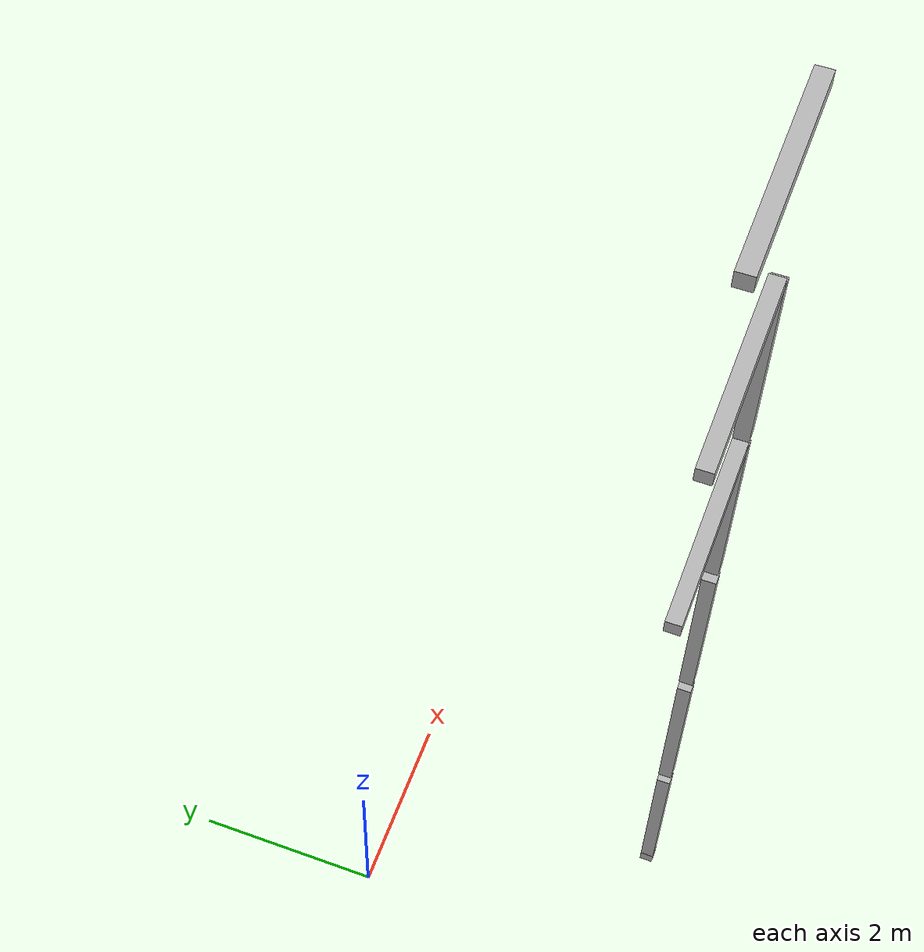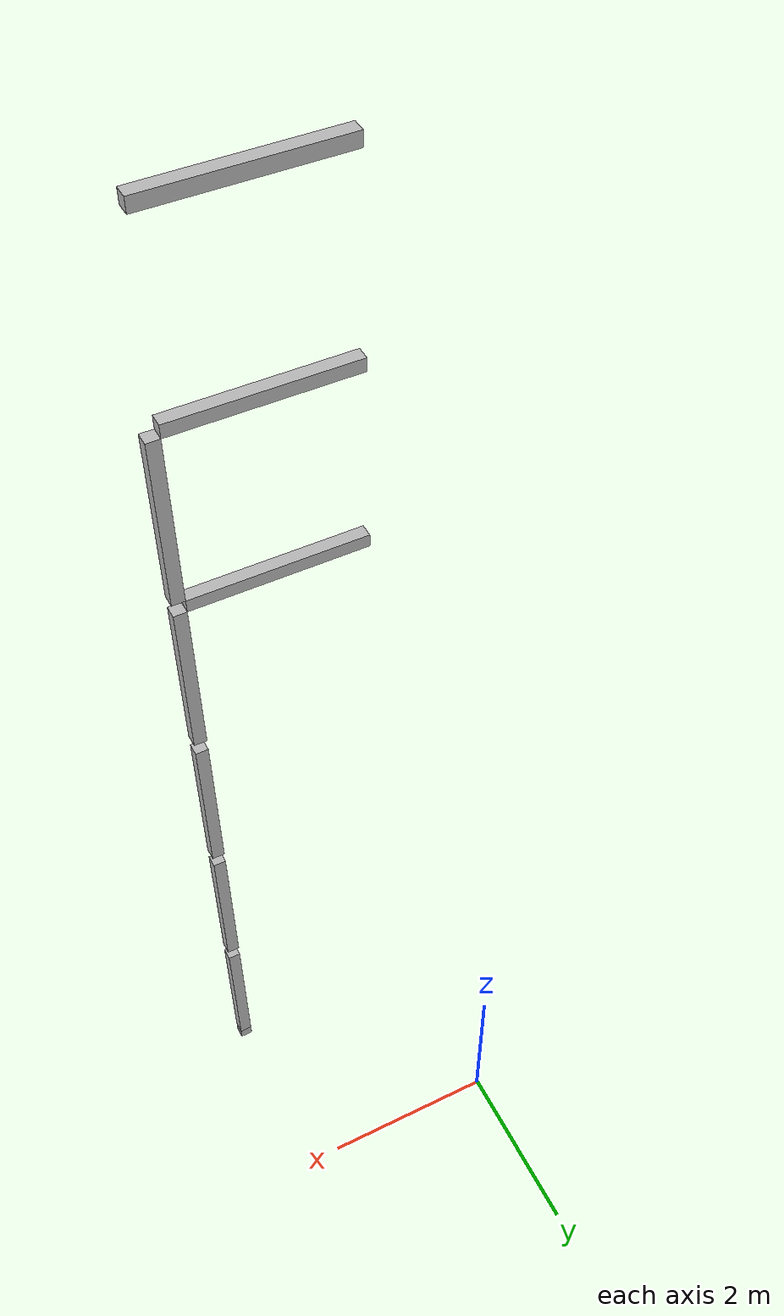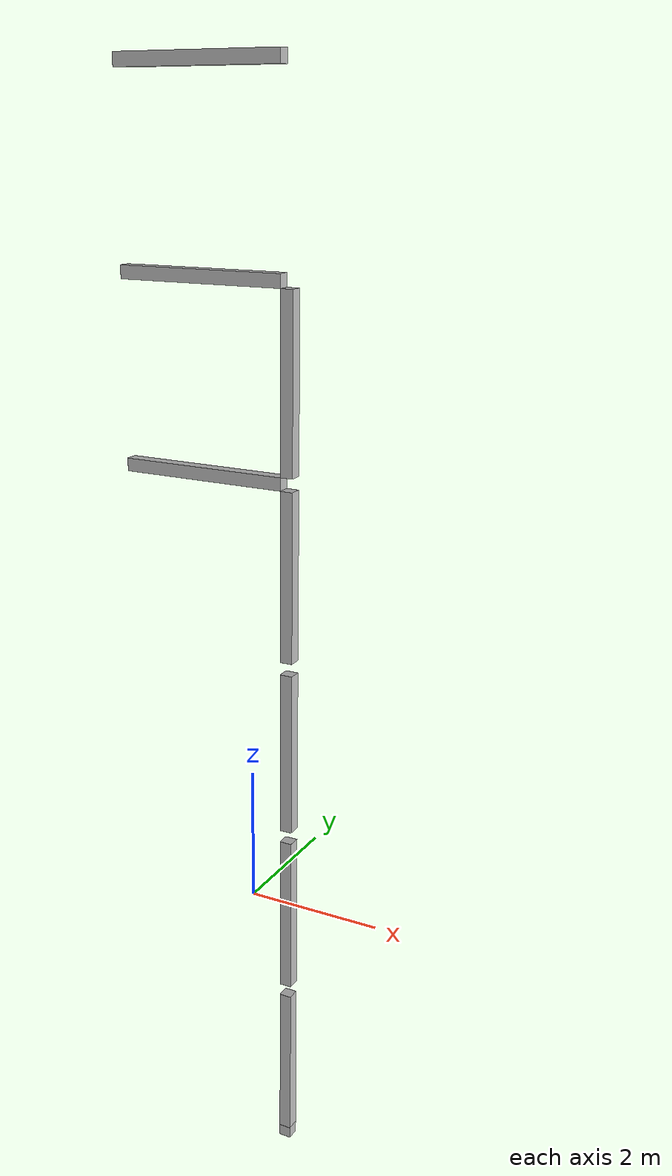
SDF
<sdf version="1.7">
 <world name="default">
  <model name="orthogonal_747_2.000.15_TS">
   <static>1</static>
   <link name="u_link_0_1_4">
    <inertial>
     <mass>1</mass>
     <inertia>
      <ixx>0.166667</ixx>
      <ixy>0</ixy>
      <ixz>0</ixz>
      <iyy>0.166667</iyy>
      <iyz>0</iyz>
      <izz>0.166667</izz>
     </inertia>
    </inertial>
    <pose>8.6 2.15 1.075 0 -0 0</pose>
    <visual name="visual_0">
     <laser_retro>260</laser_retro>
     <geometry><box><size>0.15 1e-06 0.15</size></box></geometry>
     <material>
      <script><name>Gazebo/Grey</name><uri>file://media/materials/scripts/gazebo.material</uri></script>
      <shader type="pixel"><normal_map>__default__</normal_map></shader>
      <ambient>0.678 0.498 0.659 1</ambient>
      <diffuse>0.7 0.7 0.7 1</diffuse>
      <specular>0.01 0.01 0.01 1</specular>
      <emissive>0 0 0 1</emissive>
     </material>
     <pose>0 -0.075 0 0 -0 0</pose>
     <transparency>1</transparency>
    </visual>
    <visual name="visual_1">
     <laser_retro>261</laser_retro>
     <geometry><box><size>0.15 1e-06 0.15</size></box></geometry>
     <material>
      <script><name>Gazebo/Grey</name><uri>file://media/materials/scripts/gazebo.material</uri></script>
      <shader type="pixel"><normal_map>__default__</normal_map></shader>
      <ambient>0.447 0.624 0.812 1</ambient>
      <diffuse>0.7 0.7 0.7 1</diffuse>
      <specular>0.01 0.01 0.01 1</specular>
      <emissive>0 0 0 1</emissive>
     </material>
     <pose>0 0.075 0 0 -0 0</pose>
     <transparency>1</transparency>
    </visual>
    <visual name="visual_2">
     <laser_retro>262</laser_retro>
     <geometry><box><size>0.15 0.15 1e-06</size></box></geometry>
     <material>
      <script><name>Gazebo/Grey</name><uri>file://media/materials/scripts/gazebo.material</uri></script>
      <shader type="pixel"><normal_map>__default__</normal_map></shader>
      <ambient>0.988 0.686 0.243 1</ambient>
      <diffuse>0.7 0.7 0.7 1</diffuse>
      <specular>0.01 0.01 0.01 1</specular>
      <emissive>0 0 0 1</emissive>
     </material>
     <pose>0 0 -0.075 0 -0 0</pose>
     <transparency>1</transparency>
    </visual>
    <visual name="visual_3">
     <laser_retro>263</laser_retro>
     <geometry><box><size>1e-06 0.15 0.15</size></box></geometry>
     <material>
      <script><name>Gazebo/Grey</name><uri>file://media/materials/scripts/gazebo.material</uri></script>
      <shader type="pixel"><normal_map>__default__</normal_map></shader>
      <ambient>0.988 0.914 0.31 1</ambient>
      <diffuse>0.7 0.7 0.7 1</diffuse>
      <specular>0.01 0.01 0.01 1</specular>
      <emissive>0 0 0 1</emissive>
     </material>
     <pose>0.075 0 0 0 -0 0</pose>
     <transparency>1</transparency>
    </visual>
    <visual name="visual_4">
     <laser_retro>264</laser_retro>
     <geometry><box><size>0.15 0.15 1e-06</size></box></geometry>
     <material>
      <script><name>Gazebo/Grey</name><uri>file://media/materials/scripts/gazebo.material</uri></script>
      <shader type="pixel"><normal_map>__default__</normal_map></shader>
      <ambient>0.937 0.161 0.161 1</ambient>
      <diffuse>0.7 0.7 0.7 1</diffuse>
      <specular>0.01 0.01 0.01 1</specular>
      <emissive>0 0 0 1</emissive>
     </material>
     <pose>0 0 0.075 0 -0 0</pose>
     <transparency>1</transparency>
    </visual>
    <visual name="visual_5">
     <laser_retro>265</laser_retro>
     <geometry><box><size>1e-06 0.15 0.15</size></box></geometry>
     <material>
      <script><name>Gazebo/Grey</name><uri>file://media/materials/scripts/gazebo.material</uri></script>
      <shader type="pixel"><normal_map>__default__</normal_map></shader>
      <ambient>0.541 0.886 0.204 1</ambient>
      <diffuse>0.7 0.7 0.7 1</diffuse>
      <specular>0.01 0.01 0.01 1</specular>
      <emissive>0 0 0 1</emissive>
     </material>
     <pose>-0.075 0 0 0 -0 0</pose>
     <transparency>1</transparency>
    </visual>
    <visual name="visual_texture">
     <geometry><box><size>0.149985 0.149985 0.149985</size></box></geometry>
     <material>
      <script>
       <uri>model://BASE_MODELS/simple_block_v2_textured/materials/scripts</uri>
       <uri>model://BASE_MODELS/simple_block_v2_textured/materials/textures</uri>
       <name>metal</name>
      </script>
     </material>
     <laser_retro>266</laser_retro>
    </visual>
    <collision name="collision">
     <geometry><box><size>0.15 0.15 0.15</size></box></geometry>
     <surface>
      <friction>
       <ode><mu>1</mu><mu2>1</mu2><fdir1>0 0 0</fdir1><slip1>0</slip1><slip2>0</slip2></ode>
       <torsional>
        <coefficient>1</coefficient>
        <patch_radius>0</patch_radius>
        <surface_radius>0</surface_radius>
        <use_patch_radius>1</use_patch_radius>
        <ode><slip>0</slip></ode>
       </torsional>
      </friction>
      <bounce><restitution_coefficient>0</restitution_coefficient><threshold>1e+06</threshold></bounce>
      <contact>
       <collide_without_contact>0</collide_without_contact>
       <collide_without_contact_bitmask>1</collide_without_contact_bitmask>
       <collide_bitmask>1</collide_bitmask>
       <ode>
        <soft_cfm>0</soft_cfm>
        <soft_erp>0.2</soft_erp>
        <kp>1e+13</kp>
        <kd>1</kd>
        <max_vel>0.01</max_vel>
        <min_depth>0</min_depth>
       </ode>
       <bullet>
        <split_impulse>1</split_impulse>
        <split_impulse_penetration_threshold>-0.01</split_impulse_penetration_threshold>
        <soft_cfm>0</soft_cfm>
        <soft_erp>0.2</soft_erp>
        <kp>1e+13</kp>
        <kd>1</kd>
       </bullet>
      </contact>
     </surface>
    </collision>
   </link>
   <link name="z_link_1_1_4">
    <inertial>
     <mass>1</mass>
     <inertia>
      <ixx>0.166667</ixx>
      <ixy>0</ixy>
      <ixz>0</ixz>
      <iyy>0.166667</iyy>
      <iyz>0</iyz>
      <izz>0.166667</izz>
     </inertia>
    </inertial>
    <pose>8.6 2.15 2.15 0 -0 0</pose>
    <visual name="visual_0">
     <laser_retro>1072</laser_retro>
     <geometry><box><size>0.15 1e-06 2</size></box></geometry>
     <material>
      <script><name>Gazebo/Grey</name><uri>file://media/materials/scripts/gazebo.material</uri></script>
      <shader type="pixel"><normal_map>__default__</normal_map></shader>
      <ambient>0.678 0.498 0.659 1</ambient>
      <diffuse>0.7 0.7 0.7 1</diffuse>
      <specular>0.01 0.01 0.01 1</specular>
      <emissive>0 0 0 1</emissive>
     </material>
     <pose>0 -0.075 0 0 -0 0</pose>
     <transparency>1</transparency>
    </visual>
    <visual name="visual_1">
     <laser_retro>1073</laser_retro>
     <geometry><box><size>0.15 1e-06 2</size></box></geometry>
     <material>
      <script><name>Gazebo/Grey</name><uri>file://media/materials/scripts/gazebo.material</uri></script>
      <shader type="pixel"><normal_map>__default__</normal_map></shader>
      <ambient>0.447 0.624 0.812 1</ambient>
      <diffuse>0.7 0.7 0.7 1</diffuse>
      <specular>0.01 0.01 0.01 1</specular>
      <emissive>0 0 0 1</emissive>
     </material>
     <pose>0 0.075 0 0 -0 0</pose>
     <transparency>1</transparency>
    </visual>
    <visual name="visual_2">
     <laser_retro>1074</laser_retro>
     <geometry><box><size>0.15 0.15 1e-06</size></box></geometry>
     <material>
      <script><name>Gazebo/Grey</name><uri>file://media/materials/scripts/gazebo.material</uri></script>
      <shader type="pixel"><normal_map>__default__</normal_map></shader>
      <ambient>0.988 0.686 0.243 1</ambient>
      <diffuse>0.7 0.7 0.7 1</diffuse>
      <specular>0.01 0.01 0.01 1</specular>
      <emissive>0 0 0 1</emissive>
     </material>
     <pose>0 0 -1 0 -0 0</pose>
     <transparency>1</transparency>
    </visual>
    <visual name="visual_3">
     <laser_retro>1075</laser_retro>
     <geometry><box><size>1e-06 0.15 2</size></box></geometry>
     <material>
      <script><name>Gazebo/Grey</name><uri>file://media/materials/scripts/gazebo.material</uri></script>
      <shader type="pixel"><normal_map>__default__</normal_map></shader>
      <ambient>0.988 0.914 0.31 1</ambient>
      <diffuse>0.7 0.7 0.7 1</diffuse>
      <specular>0.01 0.01 0.01 1</specular>
      <emissive>0 0 0 1</emissive>
     </material>
     <pose>0.075 0 0 0 -0 0</pose>
     <transparency>1</transparency>
    </visual>
    <visual name="visual_4">
     <laser_retro>1076</laser_retro>
     <geometry><box><size>0.15 0.15 1e-06</size></box></geometry>
     <material>
      <script><name>Gazebo/Grey</name><uri>file://media/materials/scripts/gazebo.material</uri></script>
      <shader type="pixel"><normal_map>__default__</normal_map></shader>
      <ambient>0.937 0.161 0.161 1</ambient>
      <diffuse>0.7 0.7 0.7 1</diffuse>
      <specular>0.01 0.01 0.01 1</specular>
      <emissive>0 0 0 1</emissive>
     </material>
     <pose>0 0 1 0 -0 0</pose>
     <transparency>1</transparency>
    </visual>
    <visual name="visual_5">
     <laser_retro>1077</laser_retro>
     <geometry><box><size>1e-06 0.15 2</size></box></geometry>
     <material>
      <script><name>Gazebo/Grey</name><uri>file://media/materials/scripts/gazebo.material</uri></script>
      <shader type="pixel"><normal_map>__default__</normal_map></shader>
      <ambient>0.541 0.886 0.204 1</ambient>
      <diffuse>0.7 0.7 0.7 1</diffuse>
      <specular>0.01 0.01 0.01 1</specular>
      <emissive>0 0 0 1</emissive>
     </material>
     <pose>-0.075 0 0 0 -0 0</pose>
     <transparency>1</transparency>
    </visual>
    <visual name="visual_texture">
     <geometry><box><size>0.149985 0.149985 1.9998</size></box></geometry>
     <material>
      <script>
       <uri>model://BASE_MODELS/simple_block_v2_textured/materials/scripts</uri>
       <uri>model://BASE_MODELS/simple_block_v2_textured/materials/textures</uri>
       <name>metal</name>
      </script>
     </material>
     <laser_retro>1078</laser_retro>
    </visual>
    <collision name="collision">
     <geometry><box><size>0.15 0.15 2</size></box></geometry>
     <surface>
      <friction>
       <ode><mu>1</mu><mu2>1</mu2><fdir1>0 0 0</fdir1><slip1>0</slip1><slip2>0</slip2></ode>
       <torsional>
        <coefficient>1</coefficient>
        <patch_radius>0</patch_radius>
        <surface_radius>0</surface_radius>
        <use_patch_radius>1</use_patch_radius>
        <ode><slip>0</slip></ode>
       </torsional>
      </friction>
      <bounce><restitution_coefficient>0</restitution_coefficient><threshold>1e+06</threshold></bounce>
      <contact>
       <collide_without_contact>0</collide_without_contact>
       <collide_without_contact_bitmask>1</collide_without_contact_bitmask>
       <collide_bitmask>1</collide_bitmask>
       <ode>
        <soft_cfm>0</soft_cfm>
        <soft_erp>0.2</soft_erp>
        <kp>1e+13</kp>
        <kd>1</kd>
        <max_vel>0.01</max_vel>
        <min_depth>0</min_depth>
       </ode>
       <bullet>
        <split_impulse>1</split_impulse>
        <split_impulse_penetration_threshold>-0.01</split_impulse_penetration_threshold>
        <soft_cfm>0</soft_cfm>
        <soft_erp>0.2</soft_erp>
        <kp>1e+13</kp>
        <kd>1</kd>
       </bullet>
      </contact>
     </surface>
    </collision>
   </link>
   <link name="z_link_2_1_4">
    <inertial>
     <mass>1</mass>
     <inertia>
      <ixx>0.166667</ixx>
      <ixy>0</ixy>
      <ixz>0</ixz>
      <iyy>0.166667</iyy>
      <iyz>0</iyz>
      <izz>0.166667</izz>
     </inertia>
    </inertial>
    <pose>8.6 2.15 4.3 0 -0 0</pose>
    <visual name="visual_0">
     <laser_retro>1975</laser_retro>
     <geometry><box><size>0.15 1e-06 2</size></box></geometry>
     <material>
      <script><name>Gazebo/Grey</name><uri>file://media/materials/scripts/gazebo.material</uri></script>
      <shader type="pixel"><normal_map>__default__</normal_map></shader>
      <ambient>0.678 0.498 0.659 1</ambient>
      <diffuse>0.7 0.7 0.7 1</diffuse>
      <specular>0.01 0.01 0.01 1</specular>
      <emissive>0 0 0 1</emissive>
     </material>
     <pose>0 -0.075 0 0 -0 0</pose>
     <transparency>1</transparency>
    </visual>
    <visual name="visual_1">
     <laser_retro>1976</laser_retro>
     <geometry><box><size>0.15 1e-06 2</size></box></geometry>
     <material>
      <script><name>Gazebo/Grey</name><uri>file://media/materials/scripts/gazebo.material</uri></script>
      <shader type="pixel"><normal_map>__default__</normal_map></shader>
      <ambient>0.447 0.624 0.812 1</ambient>
      <diffuse>0.7 0.7 0.7 1</diffuse>
      <specular>0.01 0.01 0.01 1</specular>
      <emissive>0 0 0 1</emissive>
     </material>
     <pose>0 0.075 0 0 -0 0</pose>
     <transparency>1</transparency>
    </visual>
    <visual name="visual_2">
     <laser_retro>1977</laser_retro>
     <geometry><box><size>0.15 0.15 1e-06</size></box></geometry>
     <material>
      <script><name>Gazebo/Grey</name><uri>file://media/materials/scripts/gazebo.material</uri></script>
      <shader type="pixel"><normal_map>__default__</normal_map></shader>
      <ambient>0.988 0.686 0.243 1</ambient>
      <diffuse>0.7 0.7 0.7 1</diffuse>
      <specular>0.01 0.01 0.01 1</specular>
      <emissive>0 0 0 1</emissive>
     </material>
     <pose>0 0 -1 0 -0 0</pose>
     <transparency>1</transparency>
    </visual>
    <visual name="visual_3">
     <laser_retro>1978</laser_retro>
     <geometry><box><size>1e-06 0.15 2</size></box></geometry>
     <material>
      <script><name>Gazebo/Grey</name><uri>file://media/materials/scripts/gazebo.material</uri></script>
      <shader type="pixel"><normal_map>__default__</normal_map></shader>
      <ambient>0.988 0.914 0.31 1</ambient>
      <diffuse>0.7 0.7 0.7 1</diffuse>
      <specular>0.01 0.01 0.01 1</specular>
      <emissive>0 0 0 1</emissive>
     </material>
     <pose>0.075 0 0 0 -0 0</pose>
     <transparency>1</transparency>
    </visual>
    <visual name="visual_4">
     <laser_retro>1979</laser_retro>
     <geometry><box><size>0.15 0.15 1e-06</size></box></geometry>
     <material>
      <script><name>Gazebo/Grey</name><uri>file://media/materials/scripts/gazebo.material</uri></script>
      <shader type="pixel"><normal_map>__default__</normal_map></shader>
      <ambient>0.937 0.161 0.161 1</ambient>
      <diffuse>0.7 0.7 0.7 1</diffuse>
      <specular>0.01 0.01 0.01 1</specular>
      <emissive>0 0 0 1</emissive>
     </material>
     <pose>0 0 1 0 -0 0</pose>
     <transparency>1</transparency>
    </visual>
    <visual name="visual_5">
     <laser_retro>1980</laser_retro>
     <geometry><box><size>1e-06 0.15 2</size></box></geometry>
     <material>
      <script><name>Gazebo/Grey</name><uri>file://media/materials/scripts/gazebo.material</uri></script>
      <shader type="pixel"><normal_map>__default__</normal_map></shader>
      <ambient>0.541 0.886 0.204 1</ambient>
      <diffuse>0.7 0.7 0.7 1</diffuse>
      <specular>0.01 0.01 0.01 1</specular>
      <emissive>0 0 0 1</emissive>
     </material>
     <pose>-0.075 0 0 0 -0 0</pose>
     <transparency>1</transparency>
    </visual>
    <visual name="visual_texture">
     <geometry><box><size>0.149985 0.149985 1.9998</size></box></geometry>
     <material>
      <script>
       <uri>model://BASE_MODELS/simple_block_v2_textured/materials/scripts</uri>
       <uri>model://BASE_MODELS/simple_block_v2_textured/materials/textures</uri>
       <name>metal</name>
      </script>
     </material>
     <laser_retro>1981</laser_retro>
    </visual>
    <collision name="collision">
     <geometry><box><size>0.15 0.15 2</size></box></geometry>
     <surface>
      <friction>
       <ode><mu>1</mu><mu2>1</mu2><fdir1>0 0 0</fdir1><slip1>0</slip1><slip2>0</slip2></ode>
       <torsional>
        <coefficient>1</coefficient>
        <patch_radius>0</patch_radius>
        <surface_radius>0</surface_radius>
        <use_patch_radius>1</use_patch_radius>
        <ode><slip>0</slip></ode>
       </torsional>
      </friction>
      <bounce><restitution_coefficient>0</restitution_coefficient><threshold>1e+06</threshold></bounce>
      <contact>
       <collide_without_contact>0</collide_without_contact>
       <collide_without_contact_bitmask>1</collide_without_contact_bitmask>
       <collide_bitmask>1</collide_bitmask>
       <ode>
        <soft_cfm>0</soft_cfm>
        <soft_erp>0.2</soft_erp>
        <kp>1e+13</kp>
        <kd>1</kd>
        <max_vel>0.01</max_vel>
        <min_depth>0</min_depth>
       </ode>
       <bullet>
        <split_impulse>1</split_impulse>
        <split_impulse_penetration_threshold>-0.01</split_impulse_penetration_threshold>
        <soft_cfm>0</soft_cfm>
        <soft_erp>0.2</soft_erp>
        <kp>1e+13</kp>
        <kd>1</kd>
       </bullet>
      </contact>
     </surface>
    </collision>
   </link>
   <link name="z_link_3_1_4">
    <inertial>
     <mass>1</mass>
     <inertia>
      <ixx>0.166667</ixx>
      <ixy>0</ixy>
      <ixz>0</ixz>
      <iyy>0.166667</iyy>
      <iyz>0</iyz>
      <izz>0.166667</izz>
     </inertia>
    </inertial>
    <pose>8.6 2.15 6.45 0 -0 0</pose>
    <visual name="visual_0">
     <laser_retro>2878</laser_retro>
     <geometry><box><size>0.15 1e-06 2</size></box></geometry>
     <material>
      <script><name>Gazebo/Grey</name><uri>file://media/materials/scripts/gazebo.material</uri></script>
      <shader type="pixel"><normal_map>__default__</normal_map></shader>
      <ambient>0.678 0.498 0.659 1</ambient>
      <diffuse>0.7 0.7 0.7 1</diffuse>
      <specular>0.01 0.01 0.01 1</specular>
      <emissive>0 0 0 1</emissive>
     </material>
     <pose>0 -0.075 0 0 -0 0</pose>
     <transparency>1</transparency>
    </visual>
    <visual name="visual_1">
     <laser_retro>2879</laser_retro>
     <geometry><box><size>0.15 1e-06 2</size></box></geometry>
     <material>
      <script><name>Gazebo/Grey</name><uri>file://media/materials/scripts/gazebo.material</uri></script>
      <shader type="pixel"><normal_map>__default__</normal_map></shader>
      <ambient>0.447 0.624 0.812 1</ambient>
      <diffuse>0.7 0.7 0.7 1</diffuse>
      <specular>0.01 0.01 0.01 1</specular>
      <emissive>0 0 0 1</emissive>
     </material>
     <pose>0 0.075 0 0 -0 0</pose>
     <transparency>1</transparency>
    </visual>
    <visual name="visual_2">
     <laser_retro>2880</laser_retro>
     <geometry><box><size>0.15 0.15 1e-06</size></box></geometry>
     <material>
      <script><name>Gazebo/Grey</name><uri>file://media/materials/scripts/gazebo.material</uri></script>
      <shader type="pixel"><normal_map>__default__</normal_map></shader>
      <ambient>0.988 0.686 0.243 1</ambient>
      <diffuse>0.7 0.7 0.7 1</diffuse>
      <specular>0.01 0.01 0.01 1</specular>
      <emissive>0 0 0 1</emissive>
     </material>
     <pose>0 0 -1 0 -0 0</pose>
     <transparency>1</transparency>
    </visual>
    <visual name="visual_3">
     <laser_retro>2881</laser_retro>
     <geometry><box><size>1e-06 0.15 2</size></box></geometry>
     <material>
      <script><name>Gazebo/Grey</name><uri>file://media/materials/scripts/gazebo.material</uri></script>
      <shader type="pixel"><normal_map>__default__</normal_map></shader>
      <ambient>0.988 0.914 0.31 1</ambient>
      <diffuse>0.7 0.7 0.7 1</diffuse>
      <specular>0.01 0.01 0.01 1</specular>
      <emissive>0 0 0 1</emissive>
     </material>
     <pose>0.075 0 0 0 -0 0</pose>
     <transparency>1</transparency>
    </visual>
    <visual name="visual_4">
     <laser_retro>2882</laser_retro>
     <geometry><box><size>0.15 0.15 1e-06</size></box></geometry>
     <material>
      <script><name>Gazebo/Grey</name><uri>file://media/materials/scripts/gazebo.material</uri></script>
      <shader type="pixel"><normal_map>__default__</normal_map></shader>
      <ambient>0.937 0.161 0.161 1</ambient>
      <diffuse>0.7 0.7 0.7 1</diffuse>
      <specular>0.01 0.01 0.01 1</specular>
      <emissive>0 0 0 1</emissive>
     </material>
     <pose>0 0 1 0 -0 0</pose>
     <transparency>1</transparency>
    </visual>
    <visual name="visual_5">
     <laser_retro>2883</laser_retro>
     <geometry><box><size>1e-06 0.15 2</size></box></geometry>
     <material>
      <script><name>Gazebo/Grey</name><uri>file://media/materials/scripts/gazebo.material</uri></script>
      <shader type="pixel"><normal_map>__default__</normal_map></shader>
      <ambient>0.541 0.886 0.204 1</ambient>
      <diffuse>0.7 0.7 0.7 1</diffuse>
      <specular>0.01 0.01 0.01 1</specular>
      <emissive>0 0 0 1</emissive>
     </material>
     <pose>-0.075 0 0 0 -0 0</pose>
     <transparency>1</transparency>
    </visual>
    <visual name="visual_texture">
     <geometry><box><size>0.149985 0.149985 1.9998</size></box></geometry>
     <material>
      <script>
       <uri>model://BASE_MODELS/simple_block_v2_textured/materials/scripts</uri>
       <uri>model://BASE_MODELS/simple_block_v2_textured/materials/textures</uri>
       <name>metal</name>
      </script>
     </material>
     <laser_retro>2884</laser_retro>
    </visual>
    <collision name="collision">
     <geometry><box><size>0.15 0.15 2</size></box></geometry>
     <surface>
      <friction>
       <ode><mu>1</mu><mu2>1</mu2><fdir1>0 0 0</fdir1><slip1>0</slip1><slip2>0</slip2></ode>
       <torsional>
        <coefficient>1</coefficient>
        <patch_radius>0</patch_radius>
        <surface_radius>0</surface_radius>
        <use_patch_radius>1</use_patch_radius>
        <ode><slip>0</slip></ode>
       </torsional>
      </friction>
      <bounce><restitution_coefficient>0</restitution_coefficient><threshold>1e+06</threshold></bounce>
      <contact>
       <collide_without_contact>0</collide_without_contact>
       <collide_without_contact_bitmask>1</collide_without_contact_bitmask>
       <collide_bitmask>1</collide_bitmask>
       <ode>
        <soft_cfm>0</soft_cfm>
        <soft_erp>0.2</soft_erp>
        <kp>1e+13</kp>
        <kd>1</kd>
        <max_vel>0.01</max_vel>
        <min_depth>0</min_depth>
       </ode>
       <bullet>
        <split_impulse>1</split_impulse>
        <split_impulse_penetration_threshold>-0.01</split_impulse_penetration_threshold>
        <soft_cfm>0</soft_cfm>
        <soft_erp>0.2</soft_erp>
        <kp>1e+13</kp>
        <kd>1</kd>
       </bullet>
      </contact>
     </surface>
    </collision>
   </link>
   <link name="x_link_4_1_3">
    <inertial>
     <mass>1</mass>
     <inertia>
      <ixx>0.166667</ixx>
      <ixy>0</ixy>
      <ixz>0</ixz>
      <iyy>0.166667</iyy>
      <iyz>0</iyz>
      <izz>0.166667</izz>
     </inertia>
    </inertial>
    <pose>7.525 2.15 9.675 0 -0 0</pose>
    <visual name="visual_0">
     <laser_retro>3746</laser_retro>
     <geometry><box><size>2 1e-06 0.15</size></box></geometry>
     <material>
      <script><name>Gazebo/Grey</name><uri>file://media/materials/scripts/gazebo.material</uri></script>
      <shader type="pixel"><normal_map>__default__</normal_map></shader>
      <ambient>0.678 0.498 0.659 1</ambient>
      <diffuse>0.7 0.7 0.7 1</diffuse>
      <specular>0.01 0.01 0.01 1</specular>
      <emissive>0 0 0 1</emissive>
     </material>
     <pose>0 -0.075 0 0 -0 0</pose>
     <transparency>1</transparency>
    </visual>
    <visual name="visual_1">
     <laser_retro>3747</laser_retro>
     <geometry><box><size>2 1e-06 0.15</size></box></geometry>
     <material>
      <script><name>Gazebo/Grey</name><uri>file://media/materials/scripts/gazebo.material</uri></script>
      <shader type="pixel"><normal_map>__default__</normal_map></shader>
      <ambient>0.447 0.624 0.812 1</ambient>
      <diffuse>0.7 0.7 0.7 1</diffuse>
      <specular>0.01 0.01 0.01 1</specular>
      <emissive>0 0 0 1</emissive>
     </material>
     <pose>0 0.075 0 0 -0 0</pose>
     <transparency>1</transparency>
    </visual>
    <visual name="visual_2">
     <laser_retro>3748</laser_retro>
     <geometry><box><size>2 0.15 1e-06</size></box></geometry>
     <material>
      <script><name>Gazebo/Grey</name><uri>file://media/materials/scripts/gazebo.material</uri></script>
      <shader type="pixel"><normal_map>__default__</normal_map></shader>
      <ambient>0.988 0.686 0.243 1</ambient>
      <diffuse>0.7 0.7 0.7 1</diffuse>
      <specular>0.01 0.01 0.01 1</specular>
      <emissive>0 0 0 1</emissive>
     </material>
     <pose>0 0 -0.075 0 -0 0</pose>
     <transparency>1</transparency>
    </visual>
    <visual name="visual_3">
     <laser_retro>3749</laser_retro>
     <geometry><box><size>1e-06 0.15 0.15</size></box></geometry>
     <material>
      <script><name>Gazebo/Grey</name><uri>file://media/materials/scripts/gazebo.material</uri></script>
      <shader type="pixel"><normal_map>__default__</normal_map></shader>
      <ambient>0.988 0.914 0.31 1</ambient>
      <diffuse>0.7 0.7 0.7 1</diffuse>
      <specular>0.01 0.01 0.01 1</specular>
      <emissive>0 0 0 1</emissive>
     </material>
     <pose>1 0 0 0 -0 0</pose>
     <transparency>1</transparency>
    </visual>
    <visual name="visual_4">
     <laser_retro>3750</laser_retro>
     <geometry><box><size>2 0.15 1e-06</size></box></geometry>
     <material>
      <script><name>Gazebo/Grey</name><uri>file://media/materials/scripts/gazebo.material</uri></script>
      <shader type="pixel"><normal_map>__default__</normal_map></shader>
      <ambient>0.937 0.161 0.161 1</ambient>
      <diffuse>0.7 0.7 0.7 1</diffuse>
      <specular>0.01 0.01 0.01 1</specular>
      <emissive>0 0 0 1</emissive>
     </material>
     <pose>0 0 0.075 0 -0 0</pose>
     <transparency>1</transparency>
    </visual>
    <visual name="visual_5">
     <laser_retro>3751</laser_retro>
     <geometry><box><size>1e-06 0.15 0.15</size></box></geometry>
     <material>
      <script><name>Gazebo/Grey</name><uri>file://media/materials/scripts/gazebo.material</uri></script>
      <shader type="pixel"><normal_map>__default__</normal_map></shader>
      <ambient>0.541 0.886 0.204 1</ambient>
      <diffuse>0.7 0.7 0.7 1</diffuse>
      <specular>0.01 0.01 0.01 1</specular>
      <emissive>0 0 0 1</emissive>
     </material>
     <pose>-1 0 0 0 -0 0</pose>
     <transparency>1</transparency>
    </visual>
    <visual name="visual_texture">
     <geometry><box><size>1.9998 0.149985 0.149985</size></box></geometry>
     <material>
      <script>
       <uri>model://BASE_MODELS/simple_block_v2_textured/materials/scripts</uri>
       <uri>model://BASE_MODELS/simple_block_v2_textured/materials/textures</uri>
       <name>metal</name>
      </script>
     </material>
     <laser_retro>3752</laser_retro>
    </visual>
    <collision name="collision">
     <geometry><box><size>2 0.15 0.15</size></box></geometry>
     <surface>
      <friction>
       <ode><mu>1</mu><mu2>1</mu2><fdir1>0 0 0</fdir1><slip1>0</slip1><slip2>0</slip2></ode>
       <torsional>
        <coefficient>1</coefficient>
        <patch_radius>0</patch_radius>
        <surface_radius>0</surface_radius>
        <use_patch_radius>1</use_patch_radius>
        <ode><slip>0</slip></ode>
       </torsional>
      </friction>
      <bounce><restitution_coefficient>0</restitution_coefficient><threshold>1e+06</threshold></bounce>
      <contact>
       <collide_without_contact>0</collide_without_contact>
       <collide_without_contact_bitmask>1</collide_without_contact_bitmask>
       <collide_bitmask>1</collide_bitmask>
       <ode>
        <soft_cfm>0</soft_cfm>
        <soft_erp>0.2</soft_erp>
        <kp>1e+13</kp>
        <kd>1</kd>
        <max_vel>0.01</max_vel>
        <min_depth>0</min_depth>
       </ode>
       <bullet>
        <split_impulse>1</split_impulse>
        <split_impulse_penetration_threshold>-0.01</split_impulse_penetration_threshold>
        <soft_cfm>0</soft_cfm>
        <soft_erp>0.2</soft_erp>
        <kp>1e+13</kp>
        <kd>1</kd>
       </bullet>
      </contact>
     </surface>
    </collision>
   </link>
   <link name="z_link_4_1_4">
    <inertial>
     <mass>1</mass>
     <inertia>
      <ixx>0.166667</ixx>
      <ixy>0</ixy>
      <ixz>0</ixz>
      <iyy>0.166667</iyy>
      <iyz>0</iyz>
      <izz>0.166667</izz>
     </inertia>
    </inertial>
    <pose>8.6 2.15 8.6 0 -0 0</pose>
    <visual name="visual_0">
     <laser_retro>3781</laser_retro>
     <geometry><box><size>0.15 1e-06 2</size></box></geometry>
     <material>
      <script><name>Gazebo/Grey</name><uri>file://media/materials/scripts/gazebo.material</uri></script>
      <shader type="pixel"><normal_map>__default__</normal_map></shader>
      <ambient>0.678 0.498 0.659 1</ambient>
      <diffuse>0.7 0.7 0.7 1</diffuse>
      <specular>0.01 0.01 0.01 1</specular>
      <emissive>0 0 0 1</emissive>
     </material>
     <pose>0 -0.075 0 0 -0 0</pose>
     <transparency>1</transparency>
    </visual>
    <visual name="visual_1">
     <laser_retro>3782</laser_retro>
     <geometry><box><size>0.15 1e-06 2</size></box></geometry>
     <material>
      <script><name>Gazebo/Grey</name><uri>file://media/materials/scripts/gazebo.material</uri></script>
      <shader type="pixel"><normal_map>__default__</normal_map></shader>
      <ambient>0.447 0.624 0.812 1</ambient>
      <diffuse>0.7 0.7 0.7 1</diffuse>
      <specular>0.01 0.01 0.01 1</specular>
      <emissive>0 0 0 1</emissive>
     </material>
     <pose>0 0.075 0 0 -0 0</pose>
     <transparency>1</transparency>
    </visual>
    <visual name="visual_2">
     <laser_retro>3783</laser_retro>
     <geometry><box><size>0.15 0.15 1e-06</size></box></geometry>
     <material>
      <script><name>Gazebo/Grey</name><uri>file://media/materials/scripts/gazebo.material</uri></script>
      <shader type="pixel"><normal_map>__default__</normal_map></shader>
      <ambient>0.988 0.686 0.243 1</ambient>
      <diffuse>0.7 0.7 0.7 1</diffuse>
      <specular>0.01 0.01 0.01 1</specular>
      <emissive>0 0 0 1</emissive>
     </material>
     <pose>0 0 -1 0 -0 0</pose>
     <transparency>1</transparency>
    </visual>
    <visual name="visual_3">
     <laser_retro>3784</laser_retro>
     <geometry><box><size>1e-06 0.15 2</size></box></geometry>
     <material>
      <script><name>Gazebo/Grey</name><uri>file://media/materials/scripts/gazebo.material</uri></script>
      <shader type="pixel"><normal_map>__default__</normal_map></shader>
      <ambient>0.988 0.914 0.31 1</ambient>
      <diffuse>0.7 0.7 0.7 1</diffuse>
      <specular>0.01 0.01 0.01 1</specular>
      <emissive>0 0 0 1</emissive>
     </material>
     <pose>0.075 0 0 0 -0 0</pose>
     <transparency>1</transparency>
    </visual>
    <visual name="visual_4">
     <laser_retro>3785</laser_retro>
     <geometry><box><size>0.15 0.15 1e-06</size></box></geometry>
     <material>
      <script><name>Gazebo/Grey</name><uri>file://media/materials/scripts/gazebo.material</uri></script>
      <shader type="pixel"><normal_map>__default__</normal_map></shader>
      <ambient>0.937 0.161 0.161 1</ambient>
      <diffuse>0.7 0.7 0.7 1</diffuse>
      <specular>0.01 0.01 0.01 1</specular>
      <emissive>0 0 0 1</emissive>
     </material>
     <pose>0 0 1 0 -0 0</pose>
     <transparency>1</transparency>
    </visual>
    <visual name="visual_5">
     <laser_retro>3786</laser_retro>
     <geometry><box><size>1e-06 0.15 2</size></box></geometry>
     <material>
      <script><name>Gazebo/Grey</name><uri>file://media/materials/scripts/gazebo.material</uri></script>
      <shader type="pixel"><normal_map>__default__</normal_map></shader>
      <ambient>0.541 0.886 0.204 1</ambient>
      <diffuse>0.7 0.7 0.7 1</diffuse>
      <specular>0.01 0.01 0.01 1</specular>
      <emissive>0 0 0 1</emissive>
     </material>
     <pose>-0.075 0 0 0 -0 0</pose>
     <transparency>1</transparency>
    </visual>
    <visual name="visual_texture">
     <geometry><box><size>0.149985 0.149985 1.9998</size></box></geometry>
     <material>
      <script>
       <uri>model://BASE_MODELS/simple_block_v2_textured/materials/scripts</uri>
       <uri>model://BASE_MODELS/simple_block_v2_textured/materials/textures</uri>
       <name>metal</name>
      </script>
     </material>
     <laser_retro>3787</laser_retro>
    </visual>
    <collision name="collision">
     <geometry><box><size>0.15 0.15 2</size></box></geometry>
     <surface>
      <friction>
       <ode><mu>1</mu><mu2>1</mu2><fdir1>0 0 0</fdir1><slip1>0</slip1><slip2>0</slip2></ode>
       <torsional>
        <coefficient>1</coefficient>
        <patch_radius>0</patch_radius>
        <surface_radius>0</surface_radius>
        <use_patch_radius>1</use_patch_radius>
        <ode><slip>0</slip></ode>
       </torsional>
      </friction>
      <bounce><restitution_coefficient>0</restitution_coefficient><threshold>1e+06</threshold></bounce>
      <contact>
       <collide_without_contact>0</collide_without_contact>
       <collide_without_contact_bitmask>1</collide_without_contact_bitmask>
       <collide_bitmask>1</collide_bitmask>
       <ode>
        <soft_cfm>0</soft_cfm>
        <soft_erp>0.2</soft_erp>
        <kp>1e+13</kp>
        <kd>1</kd>
        <max_vel>0.01</max_vel>
        <min_depth>0</min_depth>
       </ode>
       <bullet>
        <split_impulse>1</split_impulse>
        <split_impulse_penetration_threshold>-0.01</split_impulse_penetration_threshold>
        <soft_cfm>0</soft_cfm>
        <soft_erp>0.2</soft_erp>
        <kp>1e+13</kp>
        <kd>1</kd>
       </bullet>
      </contact>
     </surface>
    </collision>
   </link>
   <link name="x_link_5_1_3">
    <inertial>
     <mass>1</mass>
     <inertia>
      <ixx>0.166667</ixx>
      <ixy>0</ixy>
      <ixz>0</ixz>
      <iyy>0.166667</iyy>
      <iyz>0</iyz>
      <izz>0.166667</izz>
     </inertia>
    </inertial>
    <pose>7.525 2.15 11.825 0 -0 0</pose>
    <visual name="visual_0">
     <laser_retro>4649</laser_retro>
     <geometry><box><size>2 1e-06 0.15</size></box></geometry>
     <material>
      <script><name>Gazebo/Grey</name><uri>file://media/materials/scripts/gazebo.material</uri></script>
      <shader type="pixel"><normal_map>__default__</normal_map></shader>
      <ambient>0.678 0.498 0.659 1</ambient>
      <diffuse>0.7 0.7 0.7 1</diffuse>
      <specular>0.01 0.01 0.01 1</specular>
      <emissive>0 0 0 1</emissive>
     </material>
     <pose>0 -0.075 0 0 -0 0</pose>
     <transparency>1</transparency>
    </visual>
    <visual name="visual_1">
     <laser_retro>4650</laser_retro>
     <geometry><box><size>2 1e-06 0.15</size></box></geometry>
     <material>
      <script><name>Gazebo/Grey</name><uri>file://media/materials/scripts/gazebo.material</uri></script>
      <shader type="pixel"><normal_map>__default__</normal_map></shader>
      <ambient>0.447 0.624 0.812 1</ambient>
      <diffuse>0.7 0.7 0.7 1</diffuse>
      <specular>0.01 0.01 0.01 1</specular>
      <emissive>0 0 0 1</emissive>
     </material>
     <pose>0 0.075 0 0 -0 0</pose>
     <transparency>1</transparency>
    </visual>
    <visual name="visual_2">
     <laser_retro>4651</laser_retro>
     <geometry><box><size>2 0.15 1e-06</size></box></geometry>
     <material>
      <script><name>Gazebo/Grey</name><uri>file://media/materials/scripts/gazebo.material</uri></script>
      <shader type="pixel"><normal_map>__default__</normal_map></shader>
      <ambient>0.988 0.686 0.243 1</ambient>
      <diffuse>0.7 0.7 0.7 1</diffuse>
      <specular>0.01 0.01 0.01 1</specular>
      <emissive>0 0 0 1</emissive>
     </material>
     <pose>0 0 -0.075 0 -0 0</pose>
     <transparency>1</transparency>
    </visual>
    <visual name="visual_3">
     <laser_retro>4652</laser_retro>
     <geometry><box><size>1e-06 0.15 0.15</size></box></geometry>
     <material>
      <script><name>Gazebo/Grey</name><uri>file://media/materials/scripts/gazebo.material</uri></script>
      <shader type="pixel"><normal_map>__default__</normal_map></shader>
      <ambient>0.988 0.914 0.31 1</ambient>
      <diffuse>0.7 0.7 0.7 1</diffuse>
      <specular>0.01 0.01 0.01 1</specular>
      <emissive>0 0 0 1</emissive>
     </material>
     <pose>1 0 0 0 -0 0</pose>
     <transparency>1</transparency>
    </visual>
    <visual name="visual_4">
     <laser_retro>4653</laser_retro>
     <geometry><box><size>2 0.15 1e-06</size></box></geometry>
     <material>
      <script><name>Gazebo/Grey</name><uri>file://media/materials/scripts/gazebo.material</uri></script>
      <shader type="pixel"><normal_map>__default__</normal_map></shader>
      <ambient>0.937 0.161 0.161 1</ambient>
      <diffuse>0.7 0.7 0.7 1</diffuse>
      <specular>0.01 0.01 0.01 1</specular>
      <emissive>0 0 0 1</emissive>
     </material>
     <pose>0 0 0.075 0 -0 0</pose>
     <transparency>1</transparency>
    </visual>
    <visual name="visual_5">
     <laser_retro>4654</laser_retro>
     <geometry><box><size>1e-06 0.15 0.15</size></box></geometry>
     <material>
      <script><name>Gazebo/Grey</name><uri>file://media/materials/scripts/gazebo.material</uri></script>
      <shader type="pixel"><normal_map>__default__</normal_map></shader>
      <ambient>0.541 0.886 0.204 1</ambient>
      <diffuse>0.7 0.7 0.7 1</diffuse>
      <specular>0.01 0.01 0.01 1</specular>
      <emissive>0 0 0 1</emissive>
     </material>
     <pose>-1 0 0 0 -0 0</pose>
     <transparency>1</transparency>
    </visual>
    <visual name="visual_texture">
     <geometry><box><size>1.9998 0.149985 0.149985</size></box></geometry>
     <material>
      <script>
       <uri>model://BASE_MODELS/simple_block_v2_textured/materials/scripts</uri>
       <uri>model://BASE_MODELS/simple_block_v2_textured/materials/textures</uri>
       <name>metal</name>
      </script>
     </material>
     <laser_retro>4655</laser_retro>
    </visual>
    <collision name="collision">
     <geometry><box><size>2 0.15 0.15</size></box></geometry>
     <surface>
      <friction>
       <ode><mu>1</mu><mu2>1</mu2><fdir1>0 0 0</fdir1><slip1>0</slip1><slip2>0</slip2></ode>
       <torsional>
        <coefficient>1</coefficient>
        <patch_radius>0</patch_radius>
        <surface_radius>0</surface_radius>
        <use_patch_radius>1</use_patch_radius>
        <ode><slip>0</slip></ode>
       </torsional>
      </friction>
      <bounce><restitution_coefficient>0</restitution_coefficient><threshold>1e+06</threshold></bounce>
      <contact>
       <collide_without_contact>0</collide_without_contact>
       <collide_without_contact_bitmask>1</collide_without_contact_bitmask>
       <collide_bitmask>1</collide_bitmask>
       <ode>
        <soft_cfm>0</soft_cfm>
        <soft_erp>0.2</soft_erp>
        <kp>1e+13</kp>
        <kd>1</kd>
        <max_vel>0.01</max_vel>
        <min_depth>0</min_depth>
       </ode>
       <bullet>
        <split_impulse>1</split_impulse>
        <split_impulse_penetration_threshold>-0.01</split_impulse_penetration_threshold>
        <soft_cfm>0</soft_cfm>
        <soft_erp>0.2</soft_erp>
        <kp>1e+13</kp>
        <kd>1</kd>
       </bullet>
      </contact>
     </surface>
    </collision>
   </link>
   <link name="z_link_5_1_4">
    <inertial>
     <mass>1</mass>
     <inertia>
      <ixx>0.166667</ixx>
      <ixy>0</ixy>
      <ixz>0</ixz>
      <iyy>0.166667</iyy>
      <iyz>0</iyz>
      <izz>0.166667</izz>
     </inertia>
    </inertial>
    <pose>8.6 2.15 10.75 0 -0 0</pose>
    <visual name="visual_0">
     <laser_retro>4684</laser_retro>
     <geometry><box><size>0.15 1e-06 2</size></box></geometry>
     <material>
      <script><name>Gazebo/Grey</name><uri>file://media/materials/scripts/gazebo.material</uri></script>
      <shader type="pixel"><normal_map>__default__</normal_map></shader>
      <ambient>0.678 0.498 0.659 1</ambient>
      <diffuse>0.7 0.7 0.7 1</diffuse>
      <specular>0.01 0.01 0.01 1</specular>
      <emissive>0 0 0 1</emissive>
     </material>
     <pose>0 -0.075 0 0 -0 0</pose>
     <transparency>1</transparency>
    </visual>
    <visual name="visual_1">
     <laser_retro>4685</laser_retro>
     <geometry><box><size>0.15 1e-06 2</size></box></geometry>
     <material>
      <script><name>Gazebo/Grey</name><uri>file://media/materials/scripts/gazebo.material</uri></script>
      <shader type="pixel"><normal_map>__default__</normal_map></shader>
      <ambient>0.447 0.624 0.812 1</ambient>
      <diffuse>0.7 0.7 0.7 1</diffuse>
      <specular>0.01 0.01 0.01 1</specular>
      <emissive>0 0 0 1</emissive>
     </material>
     <pose>0 0.075 0 0 -0 0</pose>
     <transparency>1</transparency>
    </visual>
    <visual name="visual_2">
     <laser_retro>4686</laser_retro>
     <geometry><box><size>0.15 0.15 1e-06</size></box></geometry>
     <material>
      <script><name>Gazebo/Grey</name><uri>file://media/materials/scripts/gazebo.material</uri></script>
      <shader type="pixel"><normal_map>__default__</normal_map></shader>
      <ambient>0.988 0.686 0.243 1</ambient>
      <diffuse>0.7 0.7 0.7 1</diffuse>
      <specular>0.01 0.01 0.01 1</specular>
      <emissive>0 0 0 1</emissive>
     </material>
     <pose>0 0 -1 0 -0 0</pose>
     <transparency>1</transparency>
    </visual>
    <visual name="visual_3">
     <laser_retro>4687</laser_retro>
     <geometry><box><size>1e-06 0.15 2</size></box></geometry>
     <material>
      <script><name>Gazebo/Grey</name><uri>file://media/materials/scripts/gazebo.material</uri></script>
      <shader type="pixel"><normal_map>__default__</normal_map></shader>
      <ambient>0.988 0.914 0.31 1</ambient>
      <diffuse>0.7 0.7 0.7 1</diffuse>
      <specular>0.01 0.01 0.01 1</specular>
      <emissive>0 0 0 1</emissive>
     </material>
     <pose>0.075 0 0 0 -0 0</pose>
     <transparency>1</transparency>
    </visual>
    <visual name="visual_4">
     <laser_retro>4688</laser_retro>
     <geometry><box><size>0.15 0.15 1e-06</size></box></geometry>
     <material>
      <script><name>Gazebo/Grey</name><uri>file://media/materials/scripts/gazebo.material</uri></script>
      <shader type="pixel"><normal_map>__default__</normal_map></shader>
      <ambient>0.937 0.161 0.161 1</ambient>
      <diffuse>0.7 0.7 0.7 1</diffuse>
      <specular>0.01 0.01 0.01 1</specular>
      <emissive>0 0 0 1</emissive>
     </material>
     <pose>0 0 1 0 -0 0</pose>
     <transparency>1</transparency>
    </visual>
    <visual name="visual_5">
     <laser_retro>4689</laser_retro>
     <geometry><box><size>1e-06 0.15 2</size></box></geometry>
     <material>
      <script><name>Gazebo/Grey</name><uri>file://media/materials/scripts/gazebo.material</uri></script>
      <shader type="pixel"><normal_map>__default__</normal_map></shader>
      <ambient>0.541 0.886 0.204 1</ambient>
      <diffuse>0.7 0.7 0.7 1</diffuse>
      <specular>0.01 0.01 0.01 1</specular>
      <emissive>0 0 0 1</emissive>
     </material>
     <pose>-0.075 0 0 0 -0 0</pose>
     <transparency>1</transparency>
    </visual>
    <visual name="visual_texture">
     <geometry><box><size>0.149985 0.149985 1.9998</size></box></geometry>
     <material>
      <script>
       <uri>model://BASE_MODELS/simple_block_v2_textured/materials/scripts</uri>
       <uri>model://BASE_MODELS/simple_block_v2_textured/materials/textures</uri>
       <name>metal</name>
      </script>
     </material>
     <laser_retro>4690</laser_retro>
    </visual>
    <collision name="collision">
     <geometry><box><size>0.15 0.15 2</size></box></geometry>
     <surface>
      <friction>
       <ode><mu>1</mu><mu2>1</mu2><fdir1>0 0 0</fdir1><slip1>0</slip1><slip2>0</slip2></ode>
       <torsional>
        <coefficient>1</coefficient>
        <patch_radius>0</patch_radius>
        <surface_radius>0</surface_radius>
        <use_patch_radius>1</use_patch_radius>
        <ode><slip>0</slip></ode>
       </torsional>
      </friction>
      <bounce><restitution_coefficient>0</restitution_coefficient><threshold>1e+06</threshold></bounce>
      <contact>
       <collide_without_contact>0</collide_without_contact>
       <collide_without_contact_bitmask>1</collide_without_contact_bitmask>
       <collide_bitmask>1</collide_bitmask>
       <ode>
        <soft_cfm>0</soft_cfm>
        <soft_erp>0.2</soft_erp>
        <kp>1e+13</kp>
        <kd>1</kd>
        <max_vel>0.01</max_vel>
        <min_depth>0</min_depth>
       </ode>
       <bullet>
        <split_impulse>1</split_impulse>
        <split_impulse_penetration_threshold>-0.01</split_impulse_penetration_threshold>
        <soft_cfm>0</soft_cfm>
        <soft_erp>0.2</soft_erp>
        <kp>1e+13</kp>
        <kd>1</kd>
       </bullet>
      </contact>
     </surface>
    </collision>
   </link>
   <link name="x_link_6_1_3">
    <inertial>
     <mass>1</mass>
     <inertia>
      <ixx>0.166667</ixx>
      <ixy>0</ixy>
      <ixz>0</ixz>
      <iyy>0.166667</iyy>
      <iyz>0</iyz>
      <izz>0.166667</izz>
     </inertia>
    </inertial>
    <pose>7.525 2.15 13.975 0 -0 0</pose>
    <visual name="visual_0">
     <laser_retro>5566</laser_retro>
     <geometry><box><size>2 1e-06 0.15</size></box></geometry>
     <material>
      <script><name>Gazebo/Grey</name><uri>file://media/materials/scripts/gazebo.material</uri></script>
      <shader type="pixel"><normal_map>__default__</normal_map></shader>
      <ambient>0.678 0.498 0.659 1</ambient>
      <diffuse>0.7 0.7 0.7 1</diffuse>
      <specular>0.01 0.01 0.01 1</specular>
      <emissive>0 0 0 1</emissive>
     </material>
     <pose>0 -0.075 0 0 -0 0</pose>
     <transparency>1</transparency>
    </visual>
    <visual name="visual_1">
     <laser_retro>5567</laser_retro>
     <geometry><box><size>2 1e-06 0.15</size></box></geometry>
     <material>
      <script><name>Gazebo/Grey</name><uri>file://media/materials/scripts/gazebo.material</uri></script>
      <shader type="pixel"><normal_map>__default__</normal_map></shader>
      <ambient>0.447 0.624 0.812 1</ambient>
      <diffuse>0.7 0.7 0.7 1</diffuse>
      <specular>0.01 0.01 0.01 1</specular>
      <emissive>0 0 0 1</emissive>
     </material>
     <pose>0 0.075 0 0 -0 0</pose>
     <transparency>1</transparency>
    </visual>
    <visual name="visual_2">
     <laser_retro>5568</laser_retro>
     <geometry><box><size>2 0.15 1e-06</size></box></geometry>
     <material>
      <script><name>Gazebo/Grey</name><uri>file://media/materials/scripts/gazebo.material</uri></script>
      <shader type="pixel"><normal_map>__default__</normal_map></shader>
      <ambient>0.988 0.686 0.243 1</ambient>
      <diffuse>0.7 0.7 0.7 1</diffuse>
      <specular>0.01 0.01 0.01 1</specular>
      <emissive>0 0 0 1</emissive>
     </material>
     <pose>0 0 -0.075 0 -0 0</pose>
     <transparency>1</transparency>
    </visual>
    <visual name="visual_3">
     <laser_retro>5569</laser_retro>
     <geometry><box><size>1e-06 0.15 0.15</size></box></geometry>
     <material>
      <script><name>Gazebo/Grey</name><uri>file://media/materials/scripts/gazebo.material</uri></script>
      <shader type="pixel"><normal_map>__default__</normal_map></shader>
      <ambient>0.988 0.914 0.31 1</ambient>
      <diffuse>0.7 0.7 0.7 1</diffuse>
      <specular>0.01 0.01 0.01 1</specular>
      <emissive>0 0 0 1</emissive>
     </material>
     <pose>1 0 0 0 -0 0</pose>
     <transparency>1</transparency>
    </visual>
    <visual name="visual_4">
     <laser_retro>5570</laser_retro>
     <geometry><box><size>2 0.15 1e-06</size></box></geometry>
     <material>
      <script><name>Gazebo/Grey</name><uri>file://media/materials/scripts/gazebo.material</uri></script>
      <shader type="pixel"><normal_map>__default__</normal_map></shader>
      <ambient>0.937 0.161 0.161 1</ambient>
      <diffuse>0.7 0.7 0.7 1</diffuse>
      <specular>0.01 0.01 0.01 1</specular>
      <emissive>0 0 0 1</emissive>
     </material>
     <pose>0 0 0.075 0 -0 0</pose>
     <transparency>1</transparency>
    </visual>
    <visual name="visual_5">
     <laser_retro>5571</laser_retro>
     <geometry><box><size>1e-06 0.15 0.15</size></box></geometry>
     <material>
      <script><name>Gazebo/Grey</name><uri>file://media/materials/scripts/gazebo.material</uri></script>
      <shader type="pixel"><normal_map>__default__</normal_map></shader>
      <ambient>0.541 0.886 0.204 1</ambient>
      <diffuse>0.7 0.7 0.7 1</diffuse>
      <specular>0.01 0.01 0.01 1</specular>
      <emissive>0 0 0 1</emissive>
     </material>
     <pose>-1 0 0 0 -0 0</pose>
     <transparency>1</transparency>
    </visual>
    <visual name="visual_texture">
     <geometry><box><size>1.9998 0.149985 0.149985</size></box></geometry>
     <material>
      <script>
       <uri>model://BASE_MODELS/simple_block_v2_textured/materials/scripts</uri>
       <uri>model://BASE_MODELS/simple_block_v2_textured/materials/textures</uri>
       <name>metal</name>
      </script>
     </material>
     <laser_retro>5572</laser_retro>
    </visual>
    <collision name="collision">
     <geometry><box><size>2 0.15 0.15</size></box></geometry>
     <surface>
      <friction>
       <ode><mu>1</mu><mu2>1</mu2><fdir1>0 0 0</fdir1><slip1>0</slip1><slip2>0</slip2></ode>
       <torsional>
        <coefficient>1</coefficient>
        <patch_radius>0</patch_radius>
        <surface_radius>0</surface_radius>
        <use_patch_radius>1</use_patch_radius>
        <ode><slip>0</slip></ode>
       </torsional>
      </friction>
      <bounce><restitution_coefficient>0</restitution_coefficient><threshold>1e+06</threshold></bounce>
      <contact>
       <collide_without_contact>0</collide_without_contact>
       <collide_without_contact_bitmask>1</collide_without_contact_bitmask>
       <collide_bitmask>1</collide_bitmask>
       <ode>
        <soft_cfm>0</soft_cfm>
        <soft_erp>0.2</soft_erp>
        <kp>1e+13</kp>
        <kd>1</kd>
        <max_vel>0.01</max_vel>
        <min_depth>0</min_depth>
       </ode>
       <bullet>
        <split_impulse>1</split_impulse>
        <split_impulse_penetration_threshold>-0.01</split_impulse_penetration_threshold>
        <soft_cfm>0</soft_cfm>
        <soft_erp>0.2</soft_erp>
        <kp>1e+13</kp>
        <kd>1</kd>
       </bullet>
      </contact>
     </surface>
    </collision>
   </link>
   <pose>-6.47624 -5 -2.5 0 -0 0</pose>
  </model>
 </world>
</sdf>
